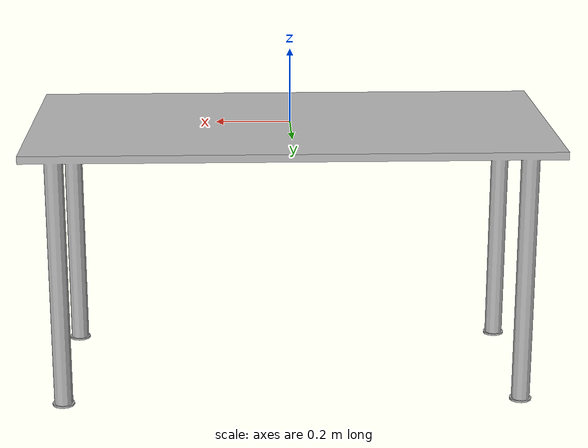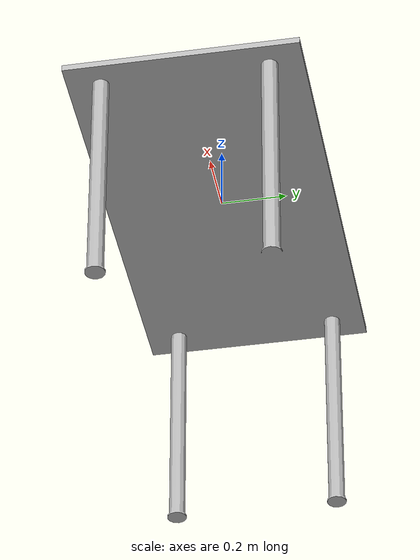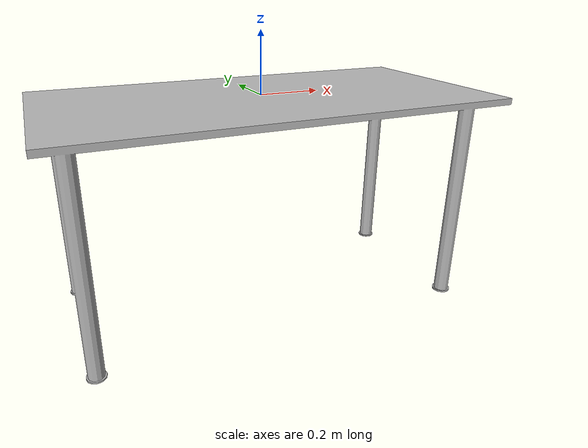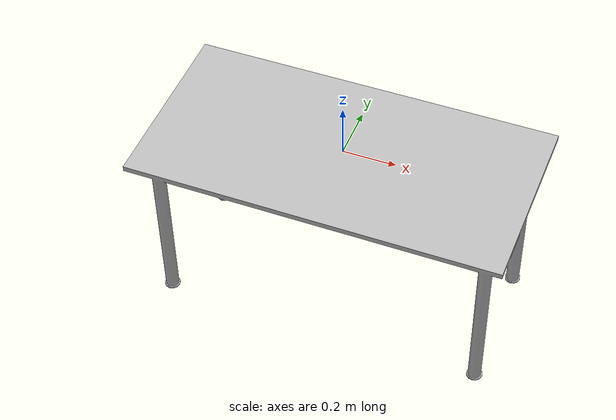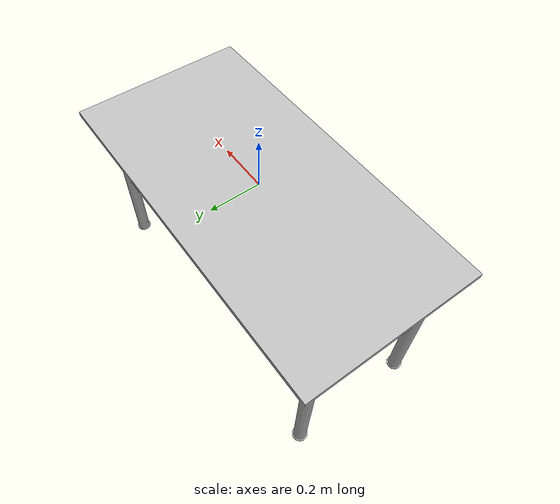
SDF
<?xml version="1.0" ?>
<sdf version='1.6'>
  <model name='Desk_3_4x'>
    <link name='Desk_3_4x'>
      <pose frame=''>0 0 0 0 -0 0</pose>
      <inertial>
        <pose frame=''>-0 0 -0.089294 0 -0 0</pose>
        <mass>24.974</mass>
        <inertia>
          <ixx>1.9138</ixx>
          <ixy>-4.1335e-16</ixy>
          <ixz>-5.0338e-16</ixz>
          <iyy>6.0372</iyy>
          <iyz>1.1077e-15</iyz>
          <izz>6.3884</izz>
        </inertia>
      </inertial>
      <collision name='Desk_3_4x_collision'>
        <pose frame=''>0 0 0 1.5708 -0 0</pose>
        <geometry>
          <mesh>
            <scale>1 1 1</scale>
            <uri>model://Desk_3_4x/meshes/Desk_3_4x.STL</uri>
          </mesh>
        </geometry>
      </collision>
      <visual name='Desk_3_4x_visual'>
        <pose frame=''>0 0 0 1.5708 -0 0</pose>
        <geometry>
          <mesh>
            <scale>1 1 1</scale>
            <uri>model://Desk_3_4x/meshes/Desk_3_4x.STL</uri>
          </mesh>
        </geometry>
      </visual>
    </link>
  </model>
</sdf>
